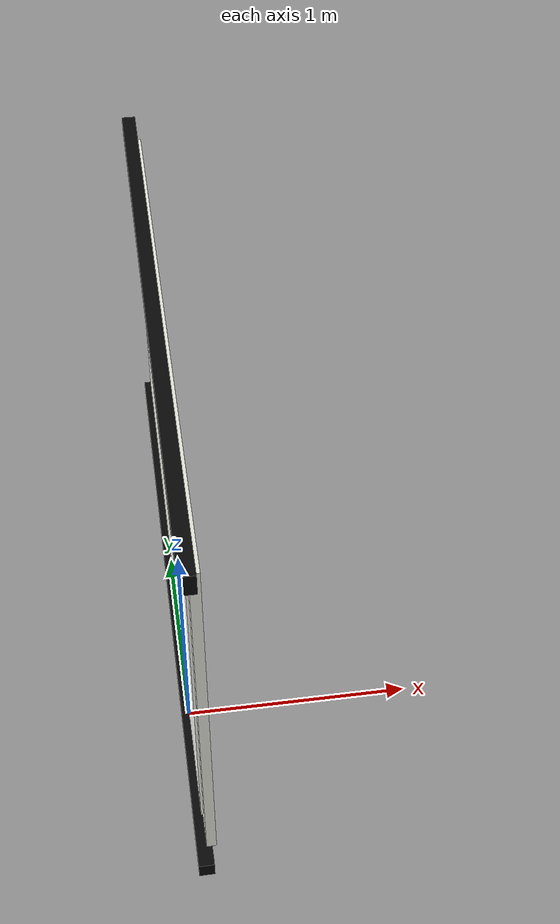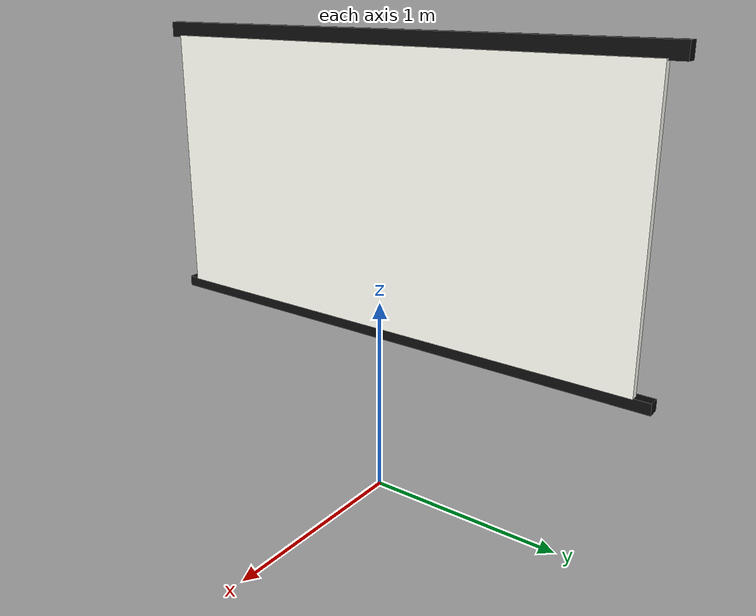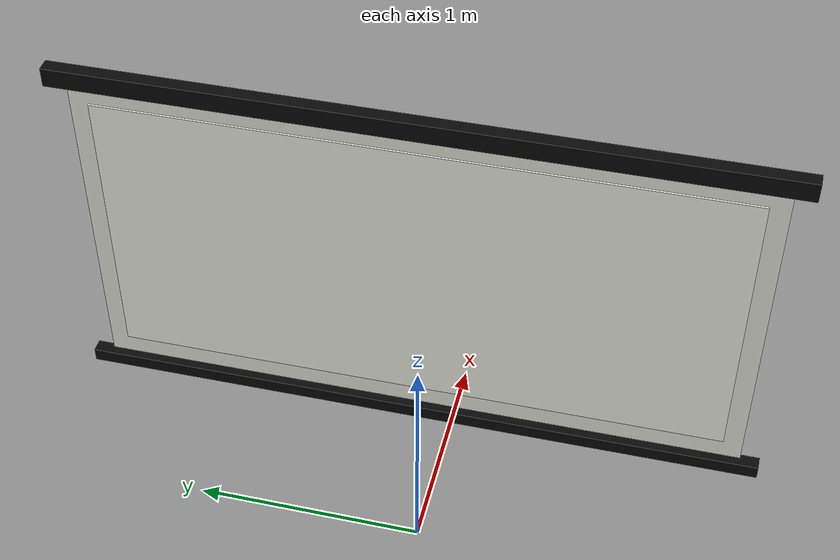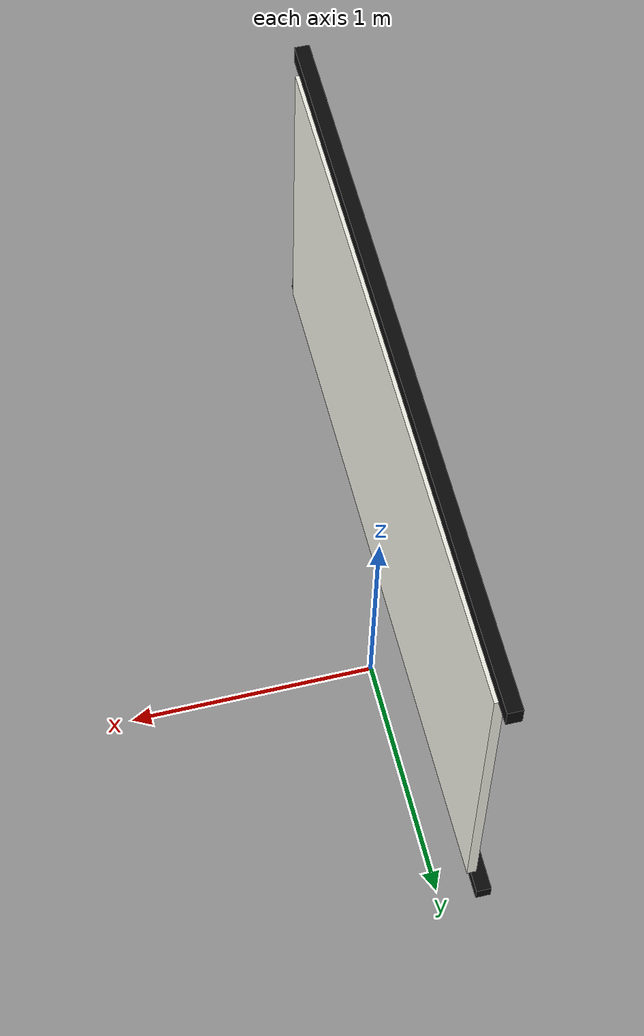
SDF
<?xml version="1.0"?>
<sdf version="1.10">
  <model name="projector_screen">
    <static>true</static>
    <link name="screen_link">
      <visual name="screen_panel_visual">
        <pose>0 0 1.55 0 0 0</pose>
        <geometry>
          <box>
            <size>0.035 2.60 1.35</size>
          </box>
        </geometry>
        <material>
          <ambient>0.88 0.88 0.84 1</ambient>
          <diffuse>0.96 0.96 0.92 1</diffuse>
          <specular>0.20 0.20 0.18 1</specular>
        </material>
      </visual>

      <visual name="screen_surface_visual">
        <pose>-0.020 0 1.55 0 0 0</pose>
        <geometry>
          <box>
            <size>0.012 2.45 1.18</size>
          </box>
        </geometry>
        <material>
          <ambient>0.98 0.98 0.95 1</ambient>
          <diffuse>1.0 1.0 0.97 1</diffuse>
          <specular>0.12 0.12 0.10 1</specular>
        </material>
      </visual>

      <visual name="top_bar_visual">
        <pose>-0.025 0 2.255 0 0 0</pose>
        <geometry>
          <box>
            <size>0.055 2.75 0.075</size>
          </box>
        </geometry>
        <material>
          <ambient>0.03 0.03 0.03 1</ambient>
          <diffuse>0.04 0.04 0.04 1</diffuse>
          <specular>0.25 0.25 0.23 1</specular>
        </material>
      </visual>

      <visual name="bottom_bar_visual">
        <pose>-0.025 0 0.845 0 0 0</pose>
        <geometry>
          <box>
            <size>0.055 2.75 0.055</size>
          </box>
        </geometry>
        <material>
          <ambient>0.03 0.03 0.03 1</ambient>
          <diffuse>0.04 0.04 0.04 1</diffuse>
          <specular>0.25 0.25 0.23 1</specular>
        </material>
      </visual>
    </link>
  </model>
</sdf>
